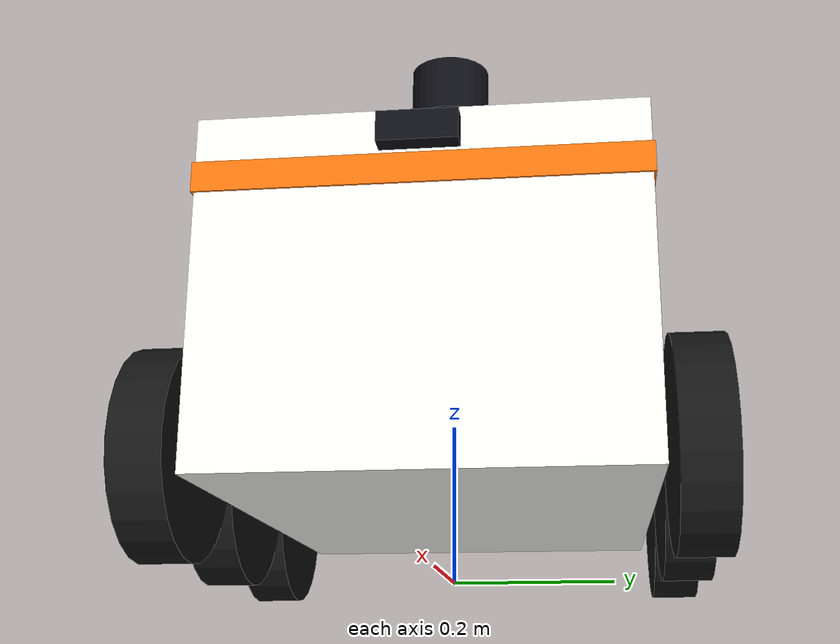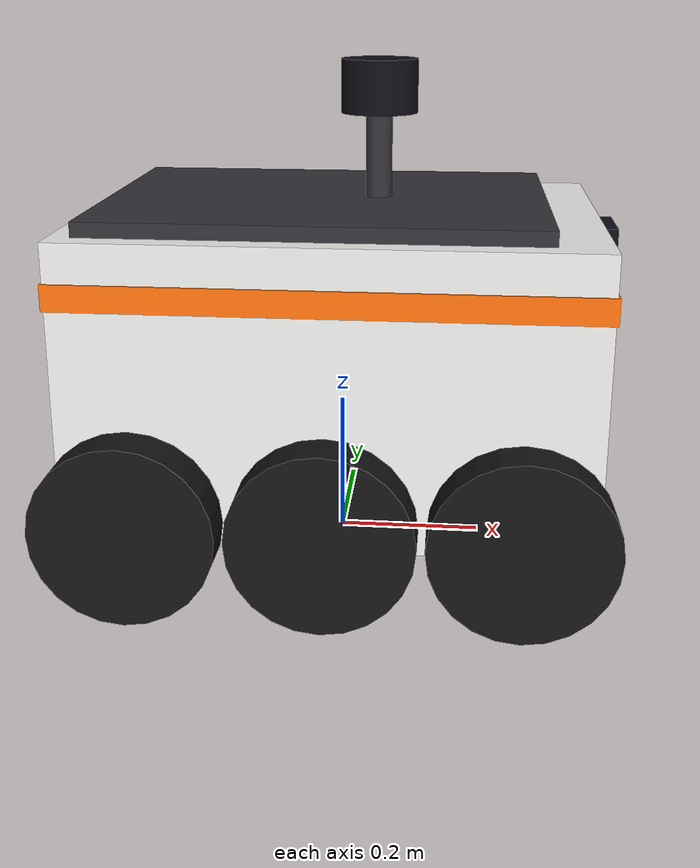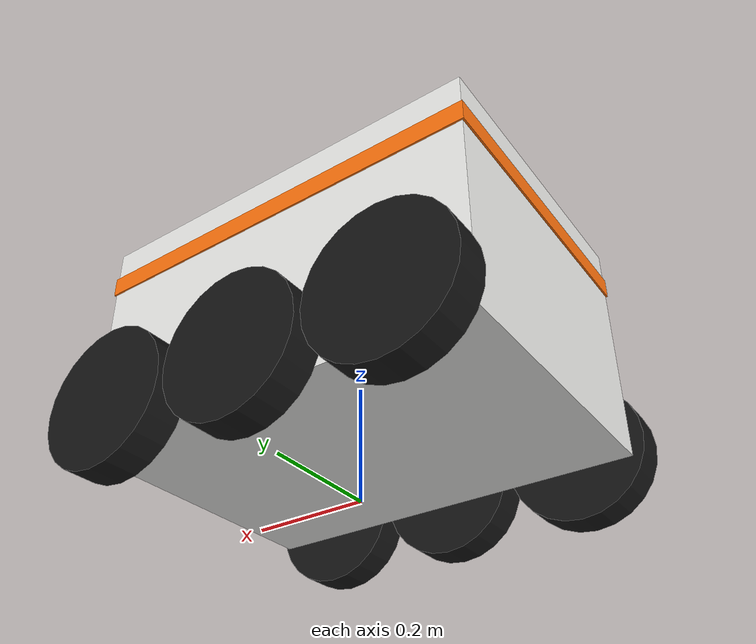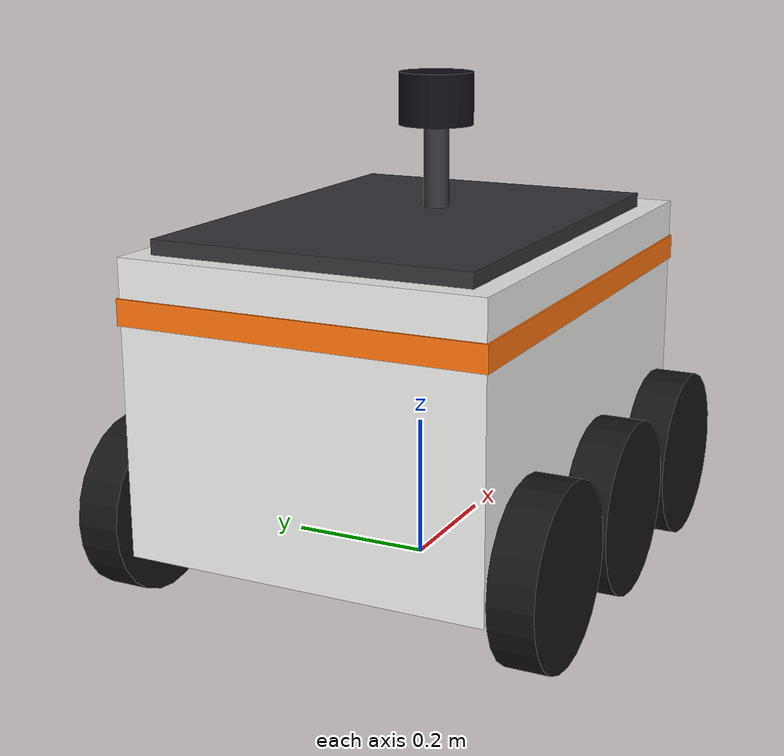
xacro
<?xml version="1.0"?>
<robot name="delivery_robot" xmlns:xacro="http://www.ros.org/wiki/xacro">

  <!-- ===================== Arguments ===================== -->
  <xacro:arg name="camera_width" default="640"/>
  <xacro:arg name="camera_height" default="480"/>
  <xacro:arg name="camera_fps" default="15"/>
  <xacro:arg name="camera_hfov" default="1.40"/>
  <xacro:arg name="camera_pitch" default="0.0"/>
  <xacro:arg name="lidar_samples" default="900"/>
  <xacro:arg name="lidar_range" default="30.0"/>
  <xacro:arg name="lidar_rate" default="10"/>
  <xacro:arg name="lidar_vertical_samples" default="16"/>
  <xacro:arg name="lidar_vertical_fov" default="0.5236"/>
  <xacro:arg name="max_linear_velocity" default="1.6"/>
  <xacro:arg name="max_angular_velocity" default="2.0"/>

  <!-- ===================== Dimensions ===================== -->
  <xacro:property name="PI" value="3.14159265358979"/>
  <xacro:property name="wheel_radius" value="0.12"/>
  <xacro:property name="wheel_width" value="0.06"/>
  <xacro:property name="wheel_y" value="0.29"/>
  <xacro:property name="body_l" value="0.70"/>
  <xacro:property name="body_w" value="0.50"/>
  <xacro:property name="body_h" value="0.40"/>
  <!-- body bottom is 0.08 m above ground; base_link sits at wheel axle height -->
  <xacro:property name="body_z" value="${0.08 + body_h/2 - wheel_radius}"/>
  <xacro:property name="body_top" value="${0.08 + body_h - wheel_radius}"/>
  <xacro:property name="caster_r" value="0.04"/>

  <!-- ===================== Materials ===================== -->
  <material name="shell"><color rgba="0.93 0.93 0.92 1"/></material>
  <material name="lid"><color rgba="0.20 0.20 0.22 1"/></material>
  <material name="accent"><color rgba="1.0 0.45 0.05 1"/></material>
  <material name="rubber"><color rgba="0.08 0.08 0.08 1"/></material>
  <material name="sensor"><color rgba="0.05 0.05 0.08 1"/></material>

  <xacro:macro name="box_inertia" params="m x y z">
    <inertia ixx="${m*(y*y+z*z)/12}" ixy="0" ixz="0" iyy="${m*(x*x+z*z)/12}" iyz="0" izz="${m*(x*x+y*y)/12}"/>
  </xacro:macro>

  <!-- ===================== Links ===================== -->
  <link name="base_footprint"/>

  <joint name="base_joint" type="fixed">
    <parent link="base_footprint"/>
    <child link="base_link"/>
    <origin xyz="0 0 ${wheel_radius}" rpy="0 0 0"/>
  </joint>

  <link name="base_link">
    <!-- shell -->
    <visual name="shell">
      <origin xyz="0 0 ${body_z}"/>
      <geometry><box size="${body_l} ${body_w} ${body_h}"/></geometry>
      <material name="shell"/>
    </visual>
    <!-- orange accent band -->
    <visual name="band">
      <origin xyz="0 0 ${body_top - 0.07}"/>
      <geometry><box size="${body_l + 0.006} ${body_w + 0.006} 0.035"/></geometry>
      <material name="accent"/>
    </visual>
    <!-- cargo lid -->
    <visual name="lid">
      <origin xyz="-0.02 0 ${body_top + 0.01}"/>
      <geometry><box size="${body_l - 0.10} ${body_w - 0.06} 0.02"/></geometry>
      <material name="lid"/>
    </visual>
    <!-- decorative corner wheels (no collision) -->
    <xacro:macro name="deco_wheel" params="name x y">
      <visual name="${name}">
        <origin xyz="${x} ${y} 0" rpy="${PI/2} 0 0"/>
        <geometry><cylinder radius="${wheel_radius}" length="${wheel_width}"/></geometry>
        <material name="rubber"/>
      </visual>
    </xacro:macro>
    <xacro:deco_wheel name="deco_fl" x="0.25" y="${wheel_y}"/>
    <xacro:deco_wheel name="deco_fr" x="0.25" y="${-wheel_y}"/>
    <xacro:deco_wheel name="deco_rl" x="-0.25" y="${wheel_y}"/>
    <xacro:deco_wheel name="deco_rr" x="-0.25" y="${-wheel_y}"/>

    <collision>
      <origin xyz="0 0 ${body_z}"/>
      <geometry><box size="${body_l} ${body_w} ${body_h}"/></geometry>
    </collision>
    <!-- hidden casters -->
    <collision>
      <origin xyz="0.27 0 ${caster_r - wheel_radius}"/>
      <geometry><sphere radius="${caster_r}"/></geometry>
    </collision>
    <collision>
      <origin xyz="-0.27 0 ${caster_r - wheel_radius}"/>
      <geometry><sphere radius="${caster_r}"/></geometry>
    </collision>
    <inertial>
      <origin xyz="0 0 ${body_z}"/>
      <mass value="22.0"/>
      <xacro:box_inertia m="22.0" x="${body_l}" y="${body_w}" z="${body_h}"/>
    </inertial>
  </link>

  <gazebo reference="base_link">
    <!-- frictionless casters (applies to all base_link collisions) -->
    <mu1>0.0</mu1>
    <mu2>0.0</mu2>
  </gazebo>

  <!-- ===================== Driven wheels ===================== -->
  <xacro:macro name="drive_wheel" params="side y">
    <link name="wheel_${side}_link">
      <visual>
        <origin rpy="${PI/2} 0 0"/>
        <geometry><cylinder radius="${wheel_radius}" length="${wheel_width}"/></geometry>
        <material name="rubber"/>
      </visual>
      <collision>
        <origin rpy="${PI/2} 0 0"/>
        <geometry><cylinder radius="${wheel_radius}" length="${wheel_width}"/></geometry>
      </collision>
      <inertial>
        <mass value="1.2"/>
        <inertia ixx="${1.2*(3*wheel_radius*wheel_radius + wheel_width*wheel_width)/12}" ixy="0" ixz="0"
                 iyy="${1.2*wheel_radius*wheel_radius/2}" iyz="0"
                 izz="${1.2*(3*wheel_radius*wheel_radius + wheel_width*wheel_width)/12}"/>
      </inertial>
    </link>
    <joint name="wheel_${side}_joint" type="continuous">
      <parent link="base_link"/>
      <child link="wheel_${side}_link"/>
      <origin xyz="0 ${y} 0"/>
      <axis xyz="0 1 0"/>
      <dynamics damping="0.05" friction="0.0"/>
    </joint>
    <gazebo reference="wheel_${side}_link">
      <mu1>1.2</mu1>
      <mu2>1.2</mu2>
      <kp>1e6</kp>
      <kd>100</kd>
    </gazebo>
  </xacro:macro>
  <xacro:drive_wheel side="left" y="${wheel_y}"/>
  <xacro:drive_wheel side="right" y="${-wheel_y}"/>

  <!-- ===================== Sensors ===================== -->
  <!-- 3D lidar on a mast: high enough that the -15 deg beams clear the lid -->
  <xacro:property name="lidar_h" value="0.17"/>
  <joint name="lidar_joint" type="fixed">
    <parent link="base_link"/>
    <child link="lidar_link"/>
    <origin xyz="0.05 0 ${body_top + lidar_h}"/>
  </joint>
  <link name="lidar_link">
    <visual name="puck">
      <geometry><cylinder radius="0.052" length="0.072"/></geometry>
      <material name="sensor"/>
    </visual>
    <visual name="mast">
      <!-- from the lid top (lidar_h - 0.02 below) to the puck bottom (0.036 below) -->
      <origin xyz="0 0 ${-(lidar_h + 0.016) / 2}"/>
      <geometry><cylinder radius="0.018" length="${lidar_h - 0.056}"/></geometry>
      <material name="lid"/>
    </visual>
    <inertial>
      <mass value="0.2"/>
      <inertia ixx="1e-4" ixy="0" ixz="0" iyy="1e-4" iyz="0" izz="1e-4"/>
    </inertial>
  </link>

  <!-- forward camera in the front face -->
  <joint name="camera_joint" type="fixed">
    <parent link="base_link"/>
    <child link="camera_link"/>
    <origin xyz="${body_l/2 + 0.012} 0 ${body_top - 0.03}" rpy="0 $(arg camera_pitch) 0"/>
  </joint>
  <link name="camera_link">
    <visual>
      <geometry><box size="0.024 0.09 0.035"/></geometry>
      <material name="sensor"/>
    </visual>
    <inertial>
      <mass value="0.05"/>
      <inertia ixx="1e-5" ixy="0" ixz="0" iyy="1e-5" iyz="0" izz="1e-5"/>
    </inertial>
  </link>
  <joint name="camera_optical_joint" type="fixed">
    <parent link="camera_link"/>
    <child link="camera_optical_frame"/>
    <origin xyz="0 0 0" rpy="${-PI/2} 0 ${-PI/2}"/>
  </joint>
  <link name="camera_optical_frame"/>

  <joint name="imu_joint" type="fixed">
    <parent link="base_link"/>
    <child link="imu_link"/>
    <origin xyz="0 0 ${body_z}"/>
  </joint>
  <link name="imu_link">
    <inertial>
      <mass value="0.01"/>
      <inertia ixx="1e-6" ixy="0" ixz="0" iyy="1e-6" iyz="0" izz="1e-6"/>
    </inertial>
  </link>

  <gazebo reference="camera_link">
    <sensor name="front_camera" type="camera">
      <always_on>true</always_on>
      <update_rate>$(arg camera_fps)</update_rate>
      <topic>/camera/image_raw</topic>
      <gz_frame_id>camera_optical_frame</gz_frame_id>
      <camera>
        <horizontal_fov>$(arg camera_hfov)</horizontal_fov>
        <image>
          <width>$(arg camera_width)</width>
          <height>$(arg camera_height)</height>
          <format>R8G8B8</format>
        </image>
        <clip><near>0.05</near><far>150</far></clip>
        <noise><type>gaussian</type><mean>0.0</mean><stddev>0.005</stddev></noise>
      </camera>
    </sensor>
  </gazebo>

  <gazebo reference="lidar_link">
    <sensor name="lidar" type="gpu_lidar">
      <always_on>true</always_on>
      <update_rate>$(arg lidar_rate)</update_rate>
      <topic>/lidar</topic>
      <gz_frame_id>lidar_link</gz_frame_id>
      <lidar>
        <scan>
          <horizontal>
            <samples>$(arg lidar_samples)</samples>
            <resolution>1</resolution>
            <min_angle>${-PI}</min_angle>
            <max_angle>${PI - 2*PI/$(arg lidar_samples)}</max_angle>
          </horizontal>
          <vertical>
            <samples>$(arg lidar_vertical_samples)</samples>
            <resolution>1</resolution>
            <min_angle>${-$(arg lidar_vertical_fov)/2 if $(arg lidar_vertical_samples) > 1 else 0.0}</min_angle>
            <max_angle>${$(arg lidar_vertical_fov)/2 if $(arg lidar_vertical_samples) > 1 else 0.0}</max_angle>
          </vertical>
        </scan>
        <range>
          <min>0.12</min>
          <max>$(arg lidar_range)</max>
          <resolution>0.01</resolution>
        </range>
        <noise><type>gaussian</type><mean>0.0</mean><stddev>0.01</stddev></noise>
      </lidar>
    </sensor>
  </gazebo>

  <gazebo reference="imu_link">
    <sensor name="imu" type="imu">
      <always_on>true</always_on>
      <update_rate>100</update_rate>
      <topic>/imu</topic>
      <gz_frame_id>imu_link</gz_frame_id>
    </sensor>
  </gazebo>

  <!-- ===================== Gazebo systems ===================== -->
  <gazebo>
    <plugin filename="gz-sim-diff-drive-system" name="gz::sim::systems::DiffDrive">
      <left_joint>wheel_left_joint</left_joint>
      <right_joint>wheel_right_joint</right_joint>
      <wheel_separation>${2*wheel_y}</wheel_separation>
      <wheel_radius>${wheel_radius}</wheel_radius>
      <topic>/cmd_vel</topic>
      <odom_topic>/odom</odom_topic>
      <tf_topic>/odom/tf</tf_topic>
      <frame_id>odom</frame_id>
      <child_frame_id>base_footprint</child_frame_id>
      <odom_publish_frequency>30</odom_publish_frequency>
      <max_linear_velocity>$(arg max_linear_velocity)</max_linear_velocity>
      <min_linear_velocity>-$(arg max_linear_velocity)</min_linear_velocity>
      <max_angular_velocity>$(arg max_angular_velocity)</max_angular_velocity>
      <min_angular_velocity>-$(arg max_angular_velocity)</min_angular_velocity>
      <max_linear_acceleration>1.5</max_linear_acceleration>
      <min_linear_acceleration>-3.0</min_linear_acceleration>
      <max_angular_acceleration>4.0</max_angular_acceleration>
      <min_angular_acceleration>-4.0</min_angular_acceleration>
    </plugin>
    <plugin filename="gz-sim-joint-state-publisher-system" name="gz::sim::systems::JointStatePublisher">
      <topic>/joint_states</topic>
    </plugin>
  </gazebo>
</robot>
